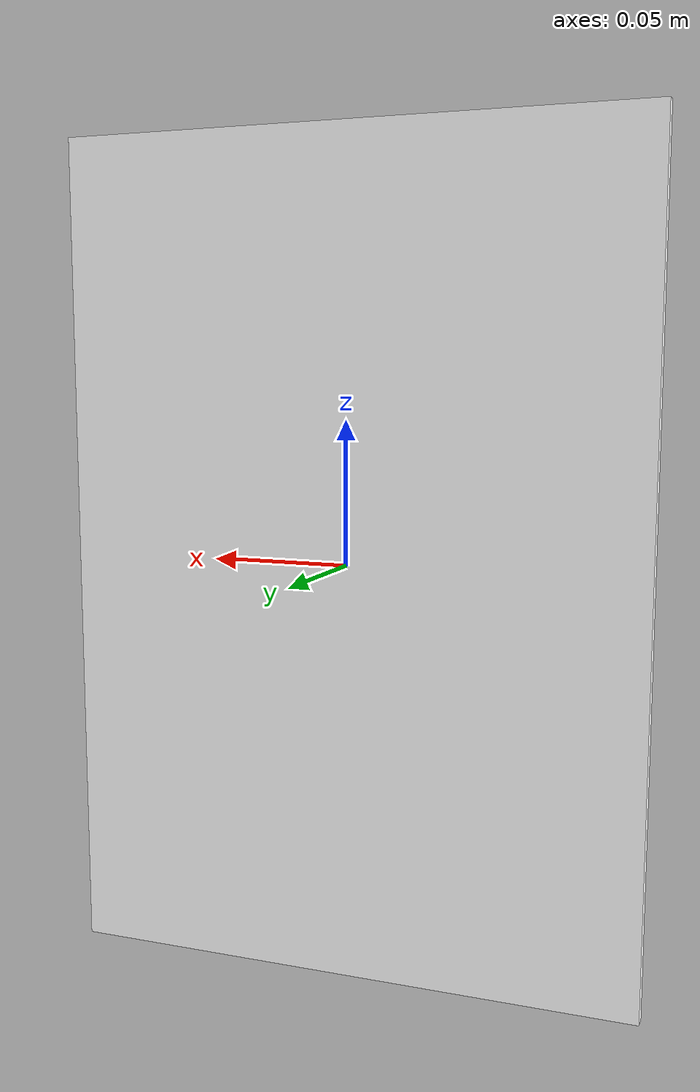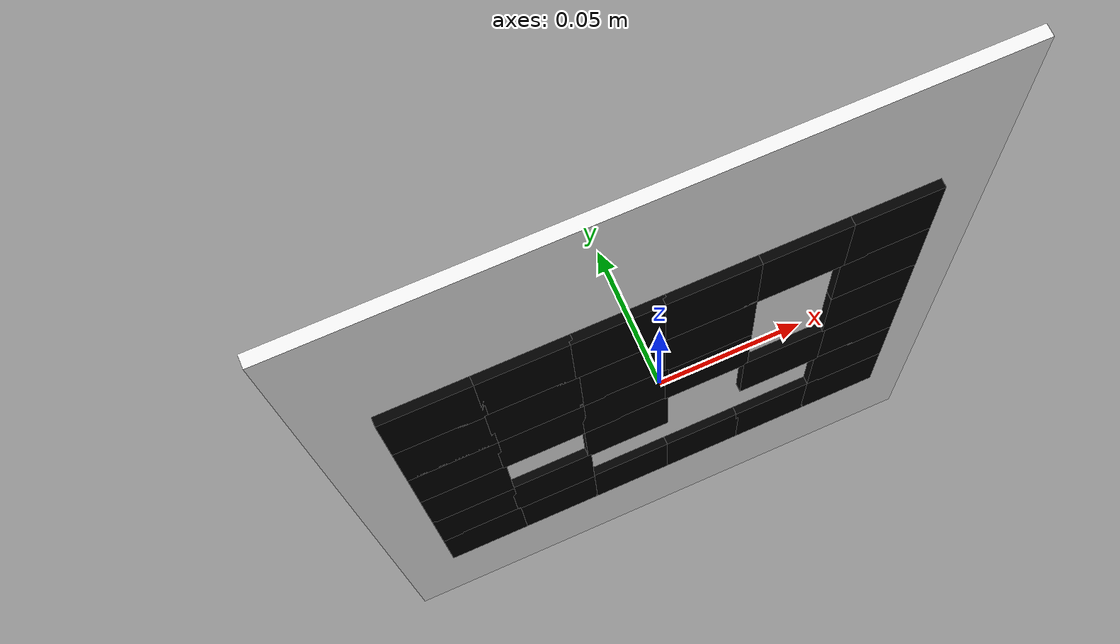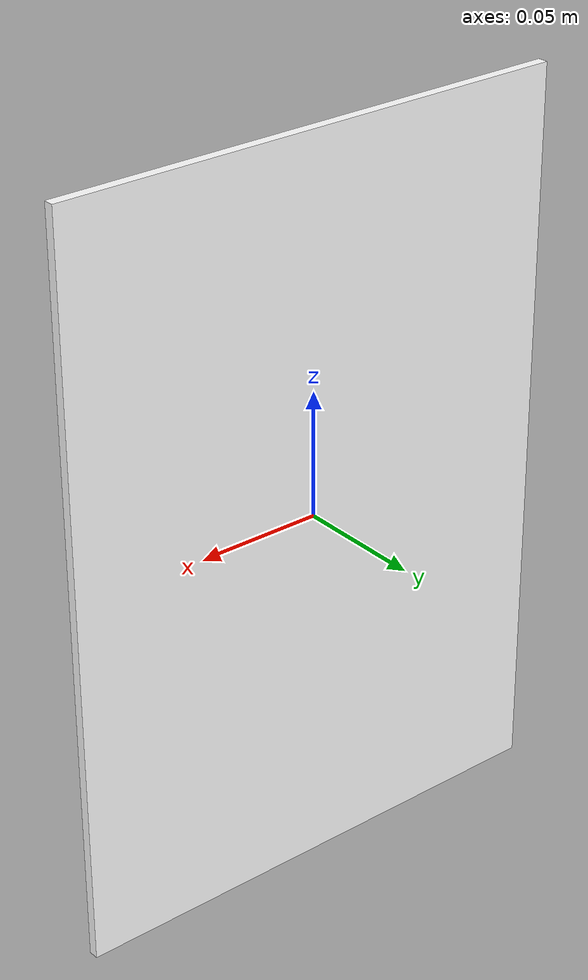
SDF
<?xml version="1.0" ?>
<sdf version="1.9">
  <model name="a4_aruco_marker_011">
    <static>true</static>
    <link name="board_link">

      <visual name="a4_white_sheet">
          <cast_shadows>false</cast_shadows>
        <pose>0 0 0 0 0 0</pose>
        <geometry>
          <box>
            <size>0.210000 0.004 0.297000</size>
          </box>
        </geometry>
        <material>
          <ambient>1 1 1 1</ambient>
          <diffuse>1 1 1 1</diffuse>
            <specular>0 0 0 1</specular>
        </material>
      </visual>

        <visual name="black_cell_0_0">
          <cast_shadows>false</cast_shadows>
          <pose>-0.070833 -0.004000 0.070833 0 0 0</pose>
          <geometry>
            <box>
              <size>0.029467 0.003 0.029467</size>
            </box>
          </geometry>
          <material>
            <ambient>0 0 0 1</ambient>
            <diffuse>0 0 0 1</diffuse>
            <specular>0 0 0 1</specular>
          </material>
        </visual>

        <visual name="black_cell_0_1">
          <cast_shadows>false</cast_shadows>
          <pose>-0.042500 -0.004000 0.070833 0 0 0</pose>
          <geometry>
            <box>
              <size>0.029467 0.003 0.029467</size>
            </box>
          </geometry>
          <material>
            <ambient>0 0 0 1</ambient>
            <diffuse>0 0 0 1</diffuse>
            <specular>0 0 0 1</specular>
          </material>
        </visual>

        <visual name="black_cell_0_2">
          <cast_shadows>false</cast_shadows>
          <pose>-0.014167 -0.004000 0.070833 0 0 0</pose>
          <geometry>
            <box>
              <size>0.029467 0.003 0.029467</size>
            </box>
          </geometry>
          <material>
            <ambient>0 0 0 1</ambient>
            <diffuse>0 0 0 1</diffuse>
            <specular>0 0 0 1</specular>
          </material>
        </visual>

        <visual name="black_cell_0_3">
          <cast_shadows>false</cast_shadows>
          <pose>0.014167 -0.004000 0.070833 0 0 0</pose>
          <geometry>
            <box>
              <size>0.029467 0.003 0.029467</size>
            </box>
          </geometry>
          <material>
            <ambient>0 0 0 1</ambient>
            <diffuse>0 0 0 1</diffuse>
            <specular>0 0 0 1</specular>
          </material>
        </visual>

        <visual name="black_cell_0_4">
          <cast_shadows>false</cast_shadows>
          <pose>0.042500 -0.004000 0.070833 0 0 0</pose>
          <geometry>
            <box>
              <size>0.029467 0.003 0.029467</size>
            </box>
          </geometry>
          <material>
            <ambient>0 0 0 1</ambient>
            <diffuse>0 0 0 1</diffuse>
            <specular>0 0 0 1</specular>
          </material>
        </visual>

        <visual name="black_cell_0_5">
          <cast_shadows>false</cast_shadows>
          <pose>0.070833 -0.004000 0.070833 0 0 0</pose>
          <geometry>
            <box>
              <size>0.029467 0.003 0.029467</size>
            </box>
          </geometry>
          <material>
            <ambient>0 0 0 1</ambient>
            <diffuse>0 0 0 1</diffuse>
            <specular>0 0 0 1</specular>
          </material>
        </visual>

        <visual name="black_cell_1_0">
          <cast_shadows>false</cast_shadows>
          <pose>-0.070833 -0.004000 0.042500 0 0 0</pose>
          <geometry>
            <box>
              <size>0.029467 0.003 0.029467</size>
            </box>
          </geometry>
          <material>
            <ambient>0 0 0 1</ambient>
            <diffuse>0 0 0 1</diffuse>
            <specular>0 0 0 1</specular>
          </material>
        </visual>

        <visual name="black_cell_1_1">
          <cast_shadows>false</cast_shadows>
          <pose>-0.042500 -0.004000 0.042500 0 0 0</pose>
          <geometry>
            <box>
              <size>0.029467 0.003 0.029467</size>
            </box>
          </geometry>
          <material>
            <ambient>0 0 0 1</ambient>
            <diffuse>0 0 0 1</diffuse>
            <specular>0 0 0 1</specular>
          </material>
        </visual>

        <visual name="black_cell_1_2">
          <cast_shadows>false</cast_shadows>
          <pose>-0.014167 -0.004000 0.042500 0 0 0</pose>
          <geometry>
            <box>
              <size>0.029467 0.003 0.029467</size>
            </box>
          </geometry>
          <material>
            <ambient>0 0 0 1</ambient>
            <diffuse>0 0 0 1</diffuse>
            <specular>0 0 0 1</specular>
          </material>
        </visual>

        <visual name="black_cell_1_3">
          <cast_shadows>false</cast_shadows>
          <pose>0.014167 -0.004000 0.042500 0 0 0</pose>
          <geometry>
            <box>
              <size>0.029467 0.003 0.029467</size>
            </box>
          </geometry>
          <material>
            <ambient>0 0 0 1</ambient>
            <diffuse>0 0 0 1</diffuse>
            <specular>0 0 0 1</specular>
          </material>
        </visual>

        <visual name="black_cell_1_5">
          <cast_shadows>false</cast_shadows>
          <pose>0.070833 -0.004000 0.042500 0 0 0</pose>
          <geometry>
            <box>
              <size>0.029467 0.003 0.029467</size>
            </box>
          </geometry>
          <material>
            <ambient>0 0 0 1</ambient>
            <diffuse>0 0 0 1</diffuse>
            <specular>0 0 0 1</specular>
          </material>
        </visual>

        <visual name="black_cell_2_0">
          <cast_shadows>false</cast_shadows>
          <pose>-0.070833 -0.004000 0.014167 0 0 0</pose>
          <geometry>
            <box>
              <size>0.029467 0.003 0.029467</size>
            </box>
          </geometry>
          <material>
            <ambient>0 0 0 1</ambient>
            <diffuse>0 0 0 1</diffuse>
            <specular>0 0 0 1</specular>
          </material>
        </visual>

        <visual name="black_cell_2_1">
          <cast_shadows>false</cast_shadows>
          <pose>-0.042500 -0.004000 0.014167 0 0 0</pose>
          <geometry>
            <box>
              <size>0.029467 0.003 0.029467</size>
            </box>
          </geometry>
          <material>
            <ambient>0 0 0 1</ambient>
            <diffuse>0 0 0 1</diffuse>
            <specular>0 0 0 1</specular>
          </material>
        </visual>

        <visual name="black_cell_2_2">
          <cast_shadows>false</cast_shadows>
          <pose>-0.014167 -0.004000 0.014167 0 0 0</pose>
          <geometry>
            <box>
              <size>0.029467 0.003 0.029467</size>
            </box>
          </geometry>
          <material>
            <ambient>0 0 0 1</ambient>
            <diffuse>0 0 0 1</diffuse>
            <specular>0 0 0 1</specular>
          </material>
        </visual>

        <visual name="black_cell_2_3">
          <cast_shadows>false</cast_shadows>
          <pose>0.014167 -0.004000 0.014167 0 0 0</pose>
          <geometry>
            <box>
              <size>0.029467 0.003 0.029467</size>
            </box>
          </geometry>
          <material>
            <ambient>0 0 0 1</ambient>
            <diffuse>0 0 0 1</diffuse>
            <specular>0 0 0 1</specular>
          </material>
        </visual>

        <visual name="black_cell_2_5">
          <cast_shadows>false</cast_shadows>
          <pose>0.070833 -0.004000 0.014167 0 0 0</pose>
          <geometry>
            <box>
              <size>0.029467 0.003 0.029467</size>
            </box>
          </geometry>
          <material>
            <ambient>0 0 0 1</ambient>
            <diffuse>0 0 0 1</diffuse>
            <specular>0 0 0 1</specular>
          </material>
        </visual>

        <visual name="black_cell_3_0">
          <cast_shadows>false</cast_shadows>
          <pose>-0.070833 -0.004000 -0.014167 0 0 0</pose>
          <geometry>
            <box>
              <size>0.029467 0.003 0.029467</size>
            </box>
          </geometry>
          <material>
            <ambient>0 0 0 1</ambient>
            <diffuse>0 0 0 1</diffuse>
            <specular>0 0 0 1</specular>
          </material>
        </visual>

        <visual name="black_cell_3_2">
          <cast_shadows>false</cast_shadows>
          <pose>-0.014167 -0.004000 -0.014167 0 0 0</pose>
          <geometry>
            <box>
              <size>0.029467 0.003 0.029467</size>
            </box>
          </geometry>
          <material>
            <ambient>0 0 0 1</ambient>
            <diffuse>0 0 0 1</diffuse>
            <specular>0 0 0 1</specular>
          </material>
        </visual>

        <visual name="black_cell_3_4">
          <cast_shadows>false</cast_shadows>
          <pose>0.042500 -0.004000 -0.014167 0 0 0</pose>
          <geometry>
            <box>
              <size>0.029467 0.003 0.029467</size>
            </box>
          </geometry>
          <material>
            <ambient>0 0 0 1</ambient>
            <diffuse>0 0 0 1</diffuse>
            <specular>0 0 0 1</specular>
          </material>
        </visual>

        <visual name="black_cell_3_5">
          <cast_shadows>false</cast_shadows>
          <pose>0.070833 -0.004000 -0.014167 0 0 0</pose>
          <geometry>
            <box>
              <size>0.029467 0.003 0.029467</size>
            </box>
          </geometry>
          <material>
            <ambient>0 0 0 1</ambient>
            <diffuse>0 0 0 1</diffuse>
            <specular>0 0 0 1</specular>
          </material>
        </visual>

        <visual name="black_cell_4_0">
          <cast_shadows>false</cast_shadows>
          <pose>-0.070833 -0.004000 -0.042500 0 0 0</pose>
          <geometry>
            <box>
              <size>0.029467 0.003 0.029467</size>
            </box>
          </geometry>
          <material>
            <ambient>0 0 0 1</ambient>
            <diffuse>0 0 0 1</diffuse>
            <specular>0 0 0 1</specular>
          </material>
        </visual>

        <visual name="black_cell_4_1">
          <cast_shadows>false</cast_shadows>
          <pose>-0.042500 -0.004000 -0.042500 0 0 0</pose>
          <geometry>
            <box>
              <size>0.029467 0.003 0.029467</size>
            </box>
          </geometry>
          <material>
            <ambient>0 0 0 1</ambient>
            <diffuse>0 0 0 1</diffuse>
            <specular>0 0 0 1</specular>
          </material>
        </visual>

        <visual name="black_cell_4_5">
          <cast_shadows>false</cast_shadows>
          <pose>0.070833 -0.004000 -0.042500 0 0 0</pose>
          <geometry>
            <box>
              <size>0.029467 0.003 0.029467</size>
            </box>
          </geometry>
          <material>
            <ambient>0 0 0 1</ambient>
            <diffuse>0 0 0 1</diffuse>
            <specular>0 0 0 1</specular>
          </material>
        </visual>

        <visual name="black_cell_5_0">
          <cast_shadows>false</cast_shadows>
          <pose>-0.070833 -0.004000 -0.070833 0 0 0</pose>
          <geometry>
            <box>
              <size>0.029467 0.003 0.029467</size>
            </box>
          </geometry>
          <material>
            <ambient>0 0 0 1</ambient>
            <diffuse>0 0 0 1</diffuse>
            <specular>0 0 0 1</specular>
          </material>
        </visual>

        <visual name="black_cell_5_1">
          <cast_shadows>false</cast_shadows>
          <pose>-0.042500 -0.004000 -0.070833 0 0 0</pose>
          <geometry>
            <box>
              <size>0.029467 0.003 0.029467</size>
            </box>
          </geometry>
          <material>
            <ambient>0 0 0 1</ambient>
            <diffuse>0 0 0 1</diffuse>
            <specular>0 0 0 1</specular>
          </material>
        </visual>

        <visual name="black_cell_5_2">
          <cast_shadows>false</cast_shadows>
          <pose>-0.014167 -0.004000 -0.070833 0 0 0</pose>
          <geometry>
            <box>
              <size>0.029467 0.003 0.029467</size>
            </box>
          </geometry>
          <material>
            <ambient>0 0 0 1</ambient>
            <diffuse>0 0 0 1</diffuse>
            <specular>0 0 0 1</specular>
          </material>
        </visual>

        <visual name="black_cell_5_3">
          <cast_shadows>false</cast_shadows>
          <pose>0.014167 -0.004000 -0.070833 0 0 0</pose>
          <geometry>
            <box>
              <size>0.029467 0.003 0.029467</size>
            </box>
          </geometry>
          <material>
            <ambient>0 0 0 1</ambient>
            <diffuse>0 0 0 1</diffuse>
            <specular>0 0 0 1</specular>
          </material>
        </visual>

        <visual name="black_cell_5_4">
          <cast_shadows>false</cast_shadows>
          <pose>0.042500 -0.004000 -0.070833 0 0 0</pose>
          <geometry>
            <box>
              <size>0.029467 0.003 0.029467</size>
            </box>
          </geometry>
          <material>
            <ambient>0 0 0 1</ambient>
            <diffuse>0 0 0 1</diffuse>
            <specular>0 0 0 1</specular>
          </material>
        </visual>

        <visual name="black_cell_5_5">
          <cast_shadows>false</cast_shadows>
          <pose>0.070833 -0.004000 -0.070833 0 0 0</pose>
          <geometry>
            <box>
              <size>0.029467 0.003 0.029467</size>
            </box>
          </geometry>
          <material>
            <ambient>0 0 0 1</ambient>
            <diffuse>0 0 0 1</diffuse>
            <specular>0 0 0 1</specular>
          </material>
        </visual>

    </link>
  </model>
</sdf>
